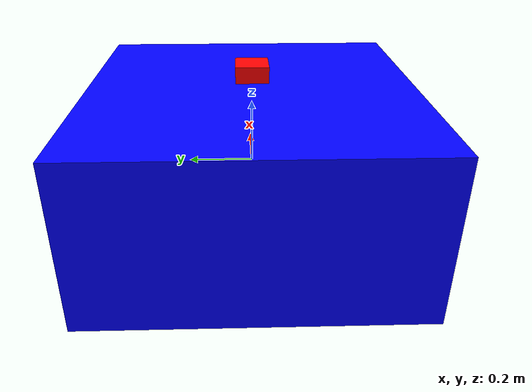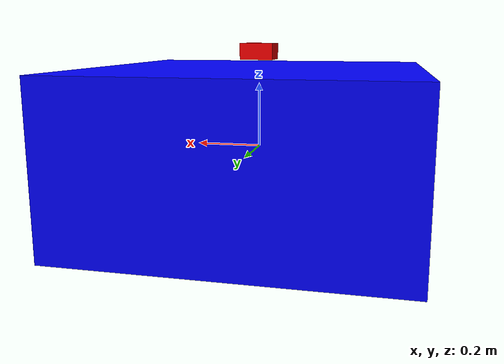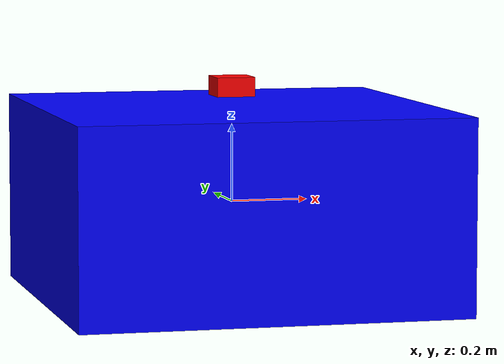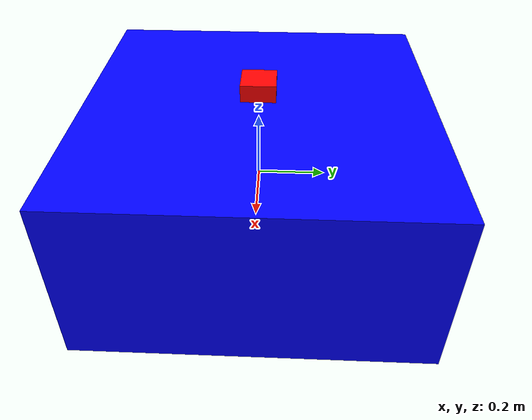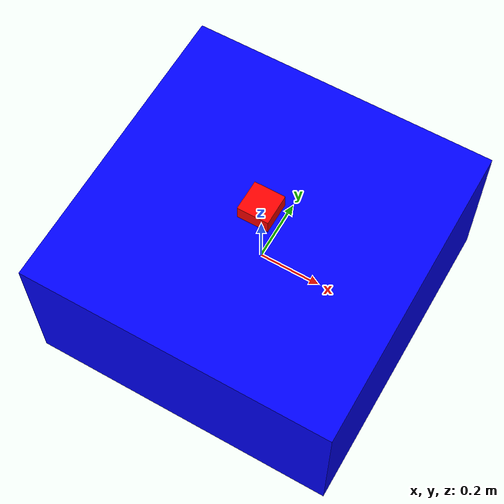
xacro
<?xml version="1.0"?>
<robot xmlns:xacro="http://www.ros.org/wiki/xacro" name="chaser">

  <!-- Declare required arguments -->
  <xacro:arg name="name" default="chaser"/>
  <xacro:arg name="sim_gazebo" default="true"/>

  <!-- Chaser base: simple box -->
  <link name="chaser_base">
    <visual>
      <geometry>
        <box size="1 1 0.5"/>
      </geometry>
      <material name="blue">
        <color rgba="0 0 1 1"/>
      </material>
    </visual>
    <collision>
      <geometry>
        <box size="1 1 0.5"/>
      </geometry>
    </collision>
    <inertial>
      <mass value="500"/>
      <inertia ixx="10" ixy="0" ixz="0" iyy="10" iyz="0" izz="10"/>
    </inertial>
  </link>

  <gazebo reference="chaser_base">
    <kinematic>true</kinematic>
  </gazebo>

  <!-- Base link fixed in world -->
  <link name="world"/>
  <joint name="base_to_world" type="fixed">
    <origin xyz="0 0 0" rpy="0 0 0"/>
    <parent link="world"/>
    <child link="chaser_base"/>
  </joint>

  <!-- Camera on top of chaser base -->
  <link name="camera_link">
    <visual>
      <geometry>
        <box size="0.1 0.1 0.05"/>
      </geometry>
      <material name="red">
        <color rgba="1 0 0 1"/>
      </material>
    </visual>
    <collision>
      <geometry>
        <box size="0.1 0.1 0.05"/>
      </geometry>
    </collision>
  </link>

  <joint name="camera_to_base" type="fixed">
    <origin xyz="0 0 0.3" rpy="0 0 0"/>
    <parent link="chaser_base"/>
    <child link="camera_link"/>
  </joint>

  <!-- Gazebo camera plugin -->
  <gazebo reference="camera_link">
    <sensor type="depth" name="rgbd_camera">
      <update_rate>30.0</update_rate>
      <camera name="camera1">
        <horizontal_fov>1.047198</horizontal_fov> <!-- 60 deg -->
        <image>
          <format>R8G8B8</format>
          <width>640</width>
          <height>480</height>
        </image>
        <clip>
          <near>0.05</near>
          <far>50</far>
        </clip>
      </camera>
      <plugin name="rgbd_camera_plugin" filename="libgazebo_ros_camera.so">
        <ros>
          <namespace>/camera1</namespace>
          <node_name>rgbd_camera_node</node_name> <!-- ADD THIS -->
          <remapping>~/image_raw:=image_raw</remapping>
          <remapping>~/camera_info:=camera_info</remapping>
          <remapping>~/depth/image_raw:=depth/image_raw</remapping>
          <remapping>~/points:=points</remapping>
        </ros>
        <frame_name>camera_link</frame_name>
      </plugin>
    </sensor>
  </gazebo>

</robot>
